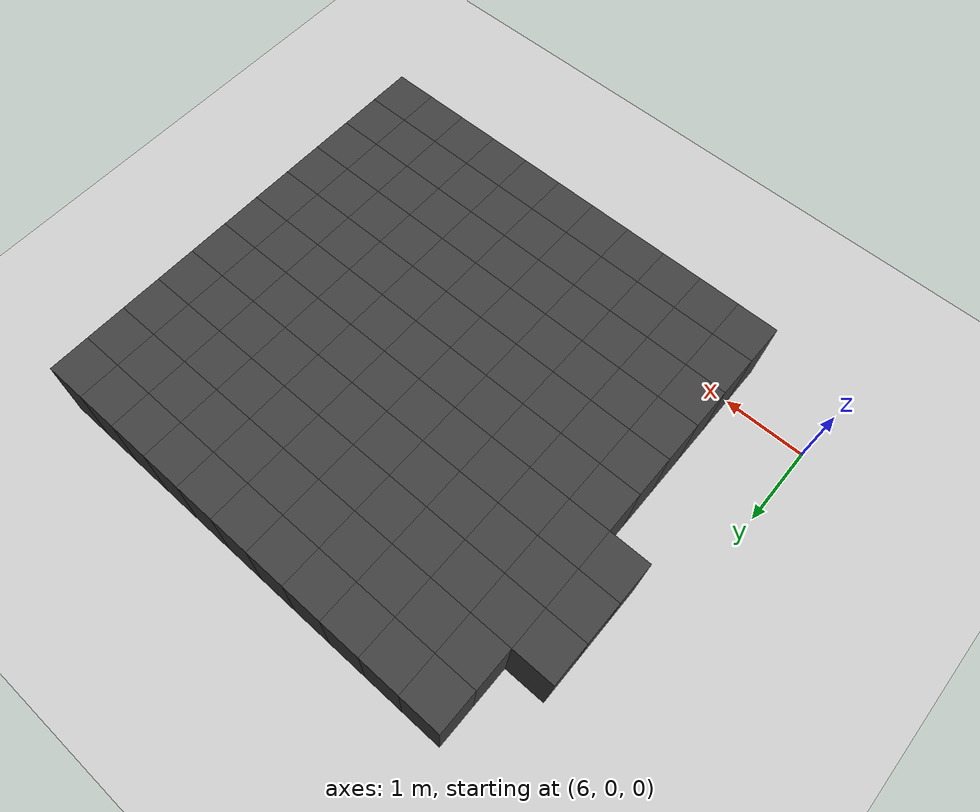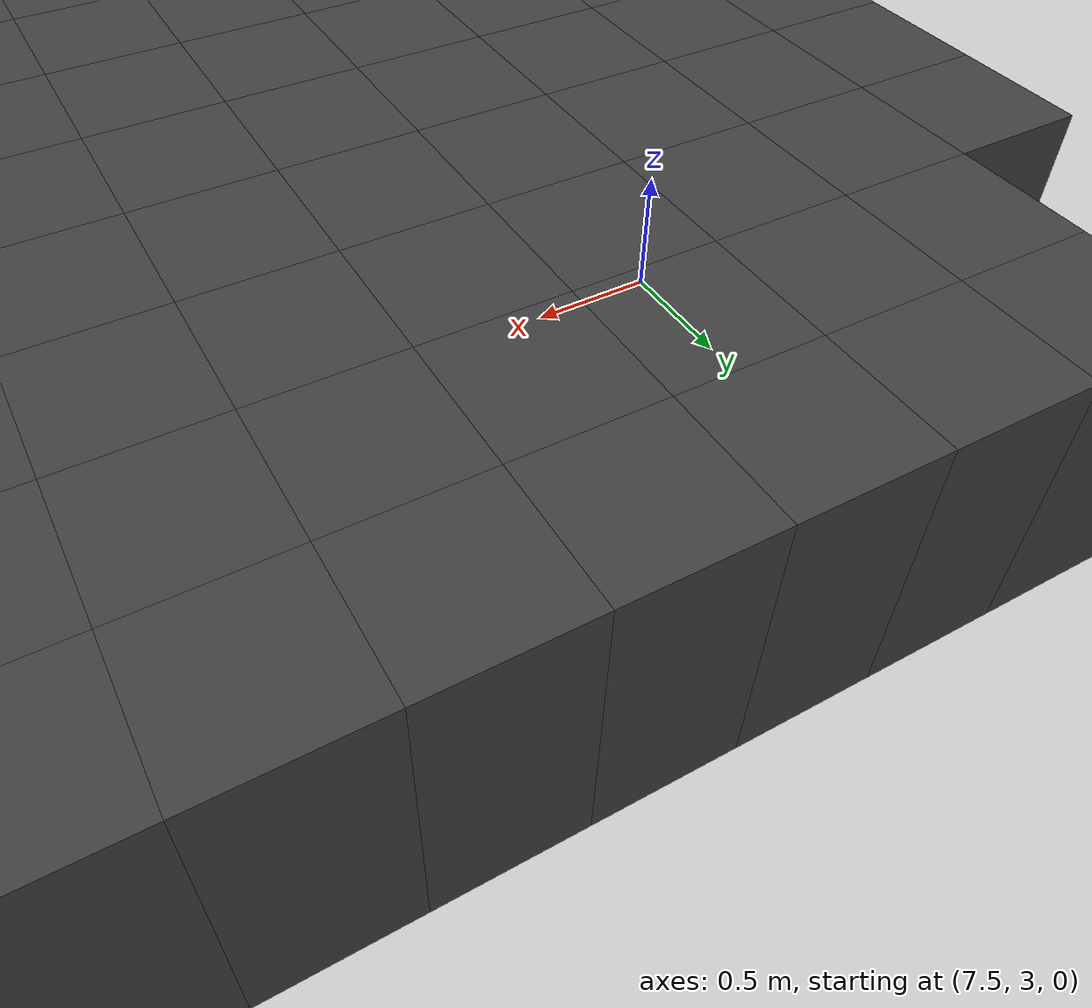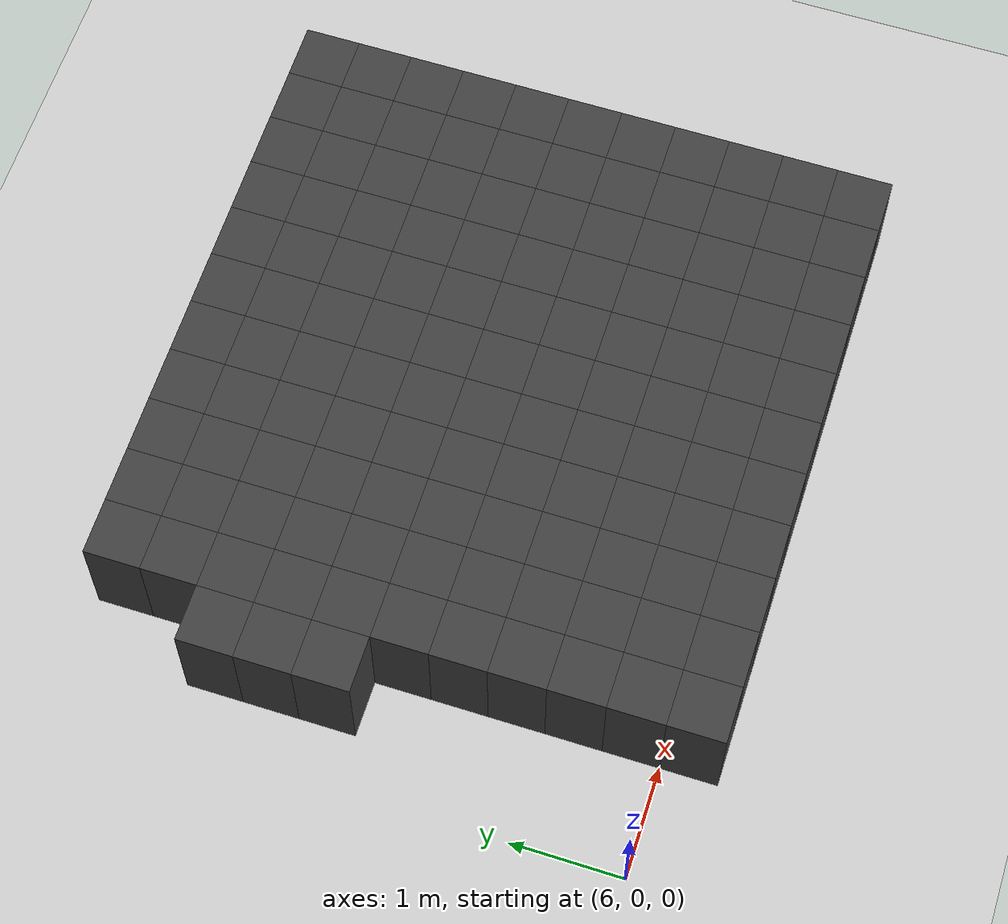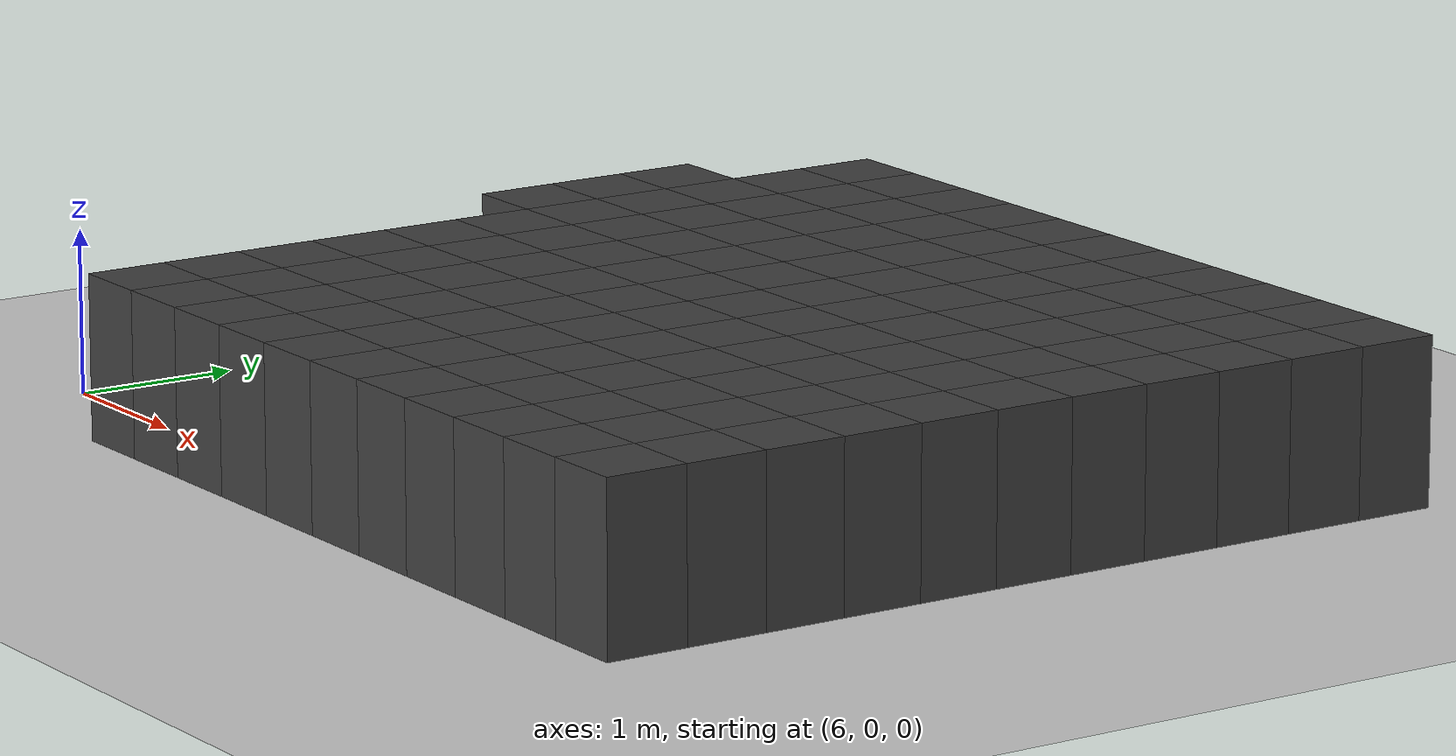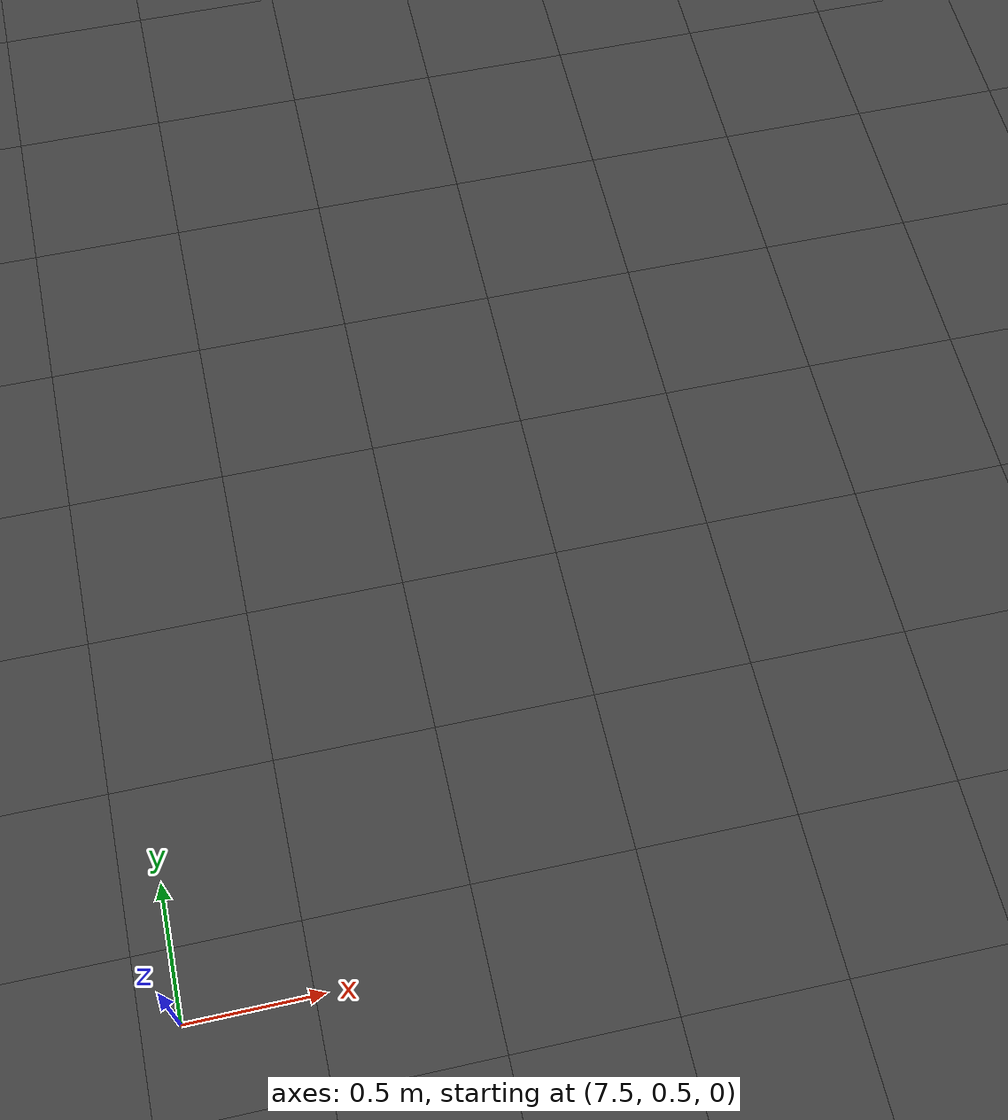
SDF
<sdf version="1.7">
 <world name="map_13820">
  <model name="ground_plane">
   <static>true</static>
   <link name="link">
    <collision name="collision">
     <geometry><plane><normal>0 0 1</normal><size>200 200</size></plane></geometry>
    </collision>
    <visual name="visual">
     <geometry><plane><normal>0 0 1</normal><size>200 200</size></plane></geometry>
     <material><ambient>0.8 0.8 0.8 1</ambient><diffuse>0.8 0.8 0.8 1</diffuse></material>
    </visual>
   </link>
  </model>
  <model name="maze_environment">
   <static>true</static>
   <link name="wall_508">
    <pose>7.250 4.750 0.500 0 0 0</pose>
    <collision name="col"><geometry><box><size>0.5 0.5 1.0</size></box></geometry></collision>
    <visual name="vis">
     <geometry><box><size>0.5 0.5 1.0</size></box></geometry>
     <material><ambient>0.15 0.15 0.15 1</ambient><diffuse>0.25 0.25 0.25 1</diffuse></material>
    </visual>
   </link>
   <link name="wall_509">
    <pose>7.750 4.750 0.500 0 0 0</pose>
    <collision name="col"><geometry><box><size>0.5 0.5 1.0</size></box></geometry></collision>
    <visual name="vis">
     <geometry><box><size>0.5 0.5 1.0</size></box></geometry>
     <material><ambient>0.15 0.15 0.15 1</ambient><diffuse>0.25 0.25 0.25 1</diffuse></material>
    </visual>
   </link>
   <link name="wall_510">
    <pose>8.250 4.750 0.500 0 0 0</pose>
    <collision name="col"><geometry><box><size>0.5 0.5 1.0</size></box></geometry></collision>
    <visual name="vis">
     <geometry><box><size>0.5 0.5 1.0</size></box></geometry>
     <material><ambient>0.15 0.15 0.15 1</ambient><diffuse>0.25 0.25 0.25 1</diffuse></material>
    </visual>
   </link>
   <link name="wall_511">
    <pose>8.750 4.750 0.500 0 0 0</pose>
    <collision name="col"><geometry><box><size>0.5 0.5 1.0</size></box></geometry></collision>
    <visual name="vis">
     <geometry><box><size>0.5 0.5 1.0</size></box></geometry>
     <material><ambient>0.15 0.15 0.15 1</ambient><diffuse>0.25 0.25 0.25 1</diffuse></material>
    </visual>
   </link>
   <link name="wall_512">
    <pose>9.250 4.750 0.500 0 0 0</pose>
    <collision name="col"><geometry><box><size>0.5 0.5 1.0</size></box></geometry></collision>
    <visual name="vis">
     <geometry><box><size>0.5 0.5 1.0</size></box></geometry>
     <material><ambient>0.15 0.15 0.15 1</ambient><diffuse>0.25 0.25 0.25 1</diffuse></material>
    </visual>
   </link>
   <link name="wall_513">
    <pose>9.750 4.750 0.500 0 0 0</pose>
    <collision name="col"><geometry><box><size>0.5 0.5 1.0</size></box></geometry></collision>
    <visual name="vis">
     <geometry><box><size>0.5 0.5 1.0</size></box></geometry>
     <material><ambient>0.15 0.15 0.15 1</ambient><diffuse>0.25 0.25 0.25 1</diffuse></material>
    </visual>
   </link>
   <link name="wall_514">
    <pose>10.250 4.750 0.500 0 0 0</pose>
    <collision name="col"><geometry><box><size>0.5 0.5 1.0</size></box></geometry></collision>
    <visual name="vis">
     <geometry><box><size>0.5 0.5 1.0</size></box></geometry>
     <material><ambient>0.15 0.15 0.15 1</ambient><diffuse>0.25 0.25 0.25 1</diffuse></material>
    </visual>
   </link>
   <link name="wall_515">
    <pose>10.750 4.750 0.500 0 0 0</pose>
    <collision name="col"><geometry><box><size>0.5 0.5 1.0</size></box></geometry></collision>
    <visual name="vis">
     <geometry><box><size>0.5 0.5 1.0</size></box></geometry>
     <material><ambient>0.15 0.15 0.15 1</ambient><diffuse>0.25 0.25 0.25 1</diffuse></material>
    </visual>
   </link>
   <link name="wall_516">
    <pose>11.250 4.750 0.500 0 0 0</pose>
    <collision name="col"><geometry><box><size>0.5 0.5 1.0</size></box></geometry></collision>
    <visual name="vis">
     <geometry><box><size>0.5 0.5 1.0</size></box></geometry>
     <material><ambient>0.15 0.15 0.15 1</ambient><diffuse>0.25 0.25 0.25 1</diffuse></material>
    </visual>
   </link>
   <link name="wall_517">
    <pose>11.750 4.750 0.500 0 0 0</pose>
    <collision name="col"><geometry><box><size>0.5 0.5 1.0</size></box></geometry></collision>
    <visual name="vis">
     <geometry><box><size>0.5 0.5 1.0</size></box></geometry>
     <material><ambient>0.15 0.15 0.15 1</ambient><diffuse>0.25 0.25 0.25 1</diffuse></material>
    </visual>
   </link>
   <link name="wall_518">
    <pose>12.250 4.750 0.500 0 0 0</pose>
    <collision name="col"><geometry><box><size>0.5 0.5 1.0</size></box></geometry></collision>
    <visual name="vis">
     <geometry><box><size>0.5 0.5 1.0</size></box></geometry>
     <material><ambient>0.15 0.15 0.15 1</ambient><diffuse>0.25 0.25 0.25 1</diffuse></material>
    </visual>
   </link>
   <link name="wall_542">
    <pose>7.250 4.250 0.500 0 0 0</pose>
    <collision name="col"><geometry><box><size>0.5 0.5 1.0</size></box></geometry></collision>
    <visual name="vis">
     <geometry><box><size>0.5 0.5 1.0</size></box></geometry>
     <material><ambient>0.15 0.15 0.15 1</ambient><diffuse>0.25 0.25 0.25 1</diffuse></material>
    </visual>
   </link>
   <link name="wall_543">
    <pose>7.750 4.250 0.500 0 0 0</pose>
    <collision name="col"><geometry><box><size>0.5 0.5 1.0</size></box></geometry></collision>
    <visual name="vis">
     <geometry><box><size>0.5 0.5 1.0</size></box></geometry>
     <material><ambient>0.15 0.15 0.15 1</ambient><diffuse>0.25 0.25 0.25 1</diffuse></material>
    </visual>
   </link>
   <link name="wall_544">
    <pose>8.250 4.250 0.500 0 0 0</pose>
    <collision name="col"><geometry><box><size>0.5 0.5 1.0</size></box></geometry></collision>
    <visual name="vis">
     <geometry><box><size>0.5 0.5 1.0</size></box></geometry>
     <material><ambient>0.15 0.15 0.15 1</ambient><diffuse>0.25 0.25 0.25 1</diffuse></material>
    </visual>
   </link>
   <link name="wall_545">
    <pose>8.750 4.250 0.500 0 0 0</pose>
    <collision name="col"><geometry><box><size>0.5 0.5 1.0</size></box></geometry></collision>
    <visual name="vis">
     <geometry><box><size>0.5 0.5 1.0</size></box></geometry>
     <material><ambient>0.15 0.15 0.15 1</ambient><diffuse>0.25 0.25 0.25 1</diffuse></material>
    </visual>
   </link>
   <link name="wall_546">
    <pose>9.250 4.250 0.500 0 0 0</pose>
    <collision name="col"><geometry><box><size>0.5 0.5 1.0</size></box></geometry></collision>
    <visual name="vis">
     <geometry><box><size>0.5 0.5 1.0</size></box></geometry>
     <material><ambient>0.15 0.15 0.15 1</ambient><diffuse>0.25 0.25 0.25 1</diffuse></material>
    </visual>
   </link>
   <link name="wall_547">
    <pose>9.750 4.250 0.500 0 0 0</pose>
    <collision name="col"><geometry><box><size>0.5 0.5 1.0</size></box></geometry></collision>
    <visual name="vis">
     <geometry><box><size>0.5 0.5 1.0</size></box></geometry>
     <material><ambient>0.15 0.15 0.15 1</ambient><diffuse>0.25 0.25 0.25 1</diffuse></material>
    </visual>
   </link>
   <link name="wall_548">
    <pose>10.250 4.250 0.500 0 0 0</pose>
    <collision name="col"><geometry><box><size>0.5 0.5 1.0</size></box></geometry></collision>
    <visual name="vis">
     <geometry><box><size>0.5 0.5 1.0</size></box></geometry>
     <material><ambient>0.15 0.15 0.15 1</ambient><diffuse>0.25 0.25 0.25 1</diffuse></material>
    </visual>
   </link>
   <link name="wall_549">
    <pose>10.750 4.250 0.500 0 0 0</pose>
    <collision name="col"><geometry><box><size>0.5 0.5 1.0</size></box></geometry></collision>
    <visual name="vis">
     <geometry><box><size>0.5 0.5 1.0</size></box></geometry>
     <material><ambient>0.15 0.15 0.15 1</ambient><diffuse>0.25 0.25 0.25 1</diffuse></material>
    </visual>
   </link>
   <link name="wall_550">
    <pose>11.250 4.250 0.500 0 0 0</pose>
    <collision name="col"><geometry><box><size>0.5 0.5 1.0</size></box></geometry></collision>
    <visual name="vis">
     <geometry><box><size>0.5 0.5 1.0</size></box></geometry>
     <material><ambient>0.15 0.15 0.15 1</ambient><diffuse>0.25 0.25 0.25 1</diffuse></material>
    </visual>
   </link>
   <link name="wall_551">
    <pose>11.750 4.250 0.500 0 0 0</pose>
    <collision name="col"><geometry><box><size>0.5 0.5 1.0</size></box></geometry></collision>
    <visual name="vis">
     <geometry><box><size>0.5 0.5 1.0</size></box></geometry>
     <material><ambient>0.15 0.15 0.15 1</ambient><diffuse>0.25 0.25 0.25 1</diffuse></material>
    </visual>
   </link>
   <link name="wall_552">
    <pose>12.250 4.250 0.500 0 0 0</pose>
    <collision name="col"><geometry><box><size>0.5 0.5 1.0</size></box></geometry></collision>
    <visual name="vis">
     <geometry><box><size>0.5 0.5 1.0</size></box></geometry>
     <material><ambient>0.15 0.15 0.15 1</ambient><diffuse>0.25 0.25 0.25 1</diffuse></material>
    </visual>
   </link>
   <link name="wall_577">
    <pose>6.750 3.750 0.500 0 0 0</pose>
    <collision name="col"><geometry><box><size>0.5 0.5 1.0</size></box></geometry></collision>
    <visual name="vis">
     <geometry><box><size>0.5 0.5 1.0</size></box></geometry>
     <material><ambient>0.15 0.15 0.15 1</ambient><diffuse>0.25 0.25 0.25 1</diffuse></material>
    </visual>
   </link>
   <link name="wall_578">
    <pose>7.250 3.750 0.500 0 0 0</pose>
    <collision name="col"><geometry><box><size>0.5 0.5 1.0</size></box></geometry></collision>
    <visual name="vis">
     <geometry><box><size>0.5 0.5 1.0</size></box></geometry>
     <material><ambient>0.15 0.15 0.15 1</ambient><diffuse>0.25 0.25 0.25 1</diffuse></material>
    </visual>
   </link>
   <link name="wall_579">
    <pose>7.750 3.750 0.500 0 0 0</pose>
    <collision name="col"><geometry><box><size>0.5 0.5 1.0</size></box></geometry></collision>
    <visual name="vis">
     <geometry><box><size>0.5 0.5 1.0</size></box></geometry>
     <material><ambient>0.15 0.15 0.15 1</ambient><diffuse>0.25 0.25 0.25 1</diffuse></material>
    </visual>
   </link>
   <link name="wall_580">
    <pose>8.250 3.750 0.500 0 0 0</pose>
    <collision name="col"><geometry><box><size>0.5 0.5 1.0</size></box></geometry></collision>
    <visual name="vis">
     <geometry><box><size>0.5 0.5 1.0</size></box></geometry>
     <material><ambient>0.15 0.15 0.15 1</ambient><diffuse>0.25 0.25 0.25 1</diffuse></material>
    </visual>
   </link>
   <link name="wall_581">
    <pose>8.750 3.750 0.500 0 0 0</pose>
    <collision name="col"><geometry><box><size>0.5 0.5 1.0</size></box></geometry></collision>
    <visual name="vis">
     <geometry><box><size>0.5 0.5 1.0</size></box></geometry>
     <material><ambient>0.15 0.15 0.15 1</ambient><diffuse>0.25 0.25 0.25 1</diffuse></material>
    </visual>
   </link>
   <link name="wall_582">
    <pose>9.250 3.750 0.500 0 0 0</pose>
    <collision name="col"><geometry><box><size>0.5 0.5 1.0</size></box></geometry></collision>
    <visual name="vis">
     <geometry><box><size>0.5 0.5 1.0</size></box></geometry>
     <material><ambient>0.15 0.15 0.15 1</ambient><diffuse>0.25 0.25 0.25 1</diffuse></material>
    </visual>
   </link>
   <link name="wall_583">
    <pose>9.750 3.750 0.500 0 0 0</pose>
    <collision name="col"><geometry><box><size>0.5 0.5 1.0</size></box></geometry></collision>
    <visual name="vis">
     <geometry><box><size>0.5 0.5 1.0</size></box></geometry>
     <material><ambient>0.15 0.15 0.15 1</ambient><diffuse>0.25 0.25 0.25 1</diffuse></material>
    </visual>
   </link>
   <link name="wall_584">
    <pose>10.250 3.750 0.500 0 0 0</pose>
    <collision name="col"><geometry><box><size>0.5 0.5 1.0</size></box></geometry></collision>
    <visual name="vis">
     <geometry><box><size>0.5 0.5 1.0</size></box></geometry>
     <material><ambient>0.15 0.15 0.15 1</ambient><diffuse>0.25 0.25 0.25 1</diffuse></material>
    </visual>
   </link>
   <link name="wall_585">
    <pose>10.750 3.750 0.500 0 0 0</pose>
    <collision name="col"><geometry><box><size>0.5 0.5 1.0</size></box></geometry></collision>
    <visual name="vis">
     <geometry><box><size>0.5 0.5 1.0</size></box></geometry>
     <material><ambient>0.15 0.15 0.15 1</ambient><diffuse>0.25 0.25 0.25 1</diffuse></material>
    </visual>
   </link>
   <link name="wall_586">
    <pose>11.250 3.750 0.500 0 0 0</pose>
    <collision name="col"><geometry><box><size>0.5 0.5 1.0</size></box></geometry></collision>
    <visual name="vis">
     <geometry><box><size>0.5 0.5 1.0</size></box></geometry>
     <material><ambient>0.15 0.15 0.15 1</ambient><diffuse>0.25 0.25 0.25 1</diffuse></material>
    </visual>
   </link>
   <link name="wall_587">
    <pose>11.750 3.750 0.500 0 0 0</pose>
    <collision name="col"><geometry><box><size>0.5 0.5 1.0</size></box></geometry></collision>
    <visual name="vis">
     <geometry><box><size>0.5 0.5 1.0</size></box></geometry>
     <material><ambient>0.15 0.15 0.15 1</ambient><diffuse>0.25 0.25 0.25 1</diffuse></material>
    </visual>
   </link>
   <link name="wall_588">
    <pose>12.250 3.750 0.500 0 0 0</pose>
    <collision name="col"><geometry><box><size>0.5 0.5 1.0</size></box></geometry></collision>
    <visual name="vis">
     <geometry><box><size>0.5 0.5 1.0</size></box></geometry>
     <material><ambient>0.15 0.15 0.15 1</ambient><diffuse>0.25 0.25 0.25 1</diffuse></material>
    </visual>
   </link>
   <link name="wall_614">
    <pose>6.750 3.250 0.500 0 0 0</pose>
    <collision name="col"><geometry><box><size>0.5 0.5 1.0</size></box></geometry></collision>
    <visual name="vis">
     <geometry><box><size>0.5 0.5 1.0</size></box></geometry>
     <material><ambient>0.15 0.15 0.15 1</ambient><diffuse>0.25 0.25 0.25 1</diffuse></material>
    </visual>
   </link>
   <link name="wall_615">
    <pose>7.250 3.250 0.500 0 0 0</pose>
    <collision name="col"><geometry><box><size>0.5 0.5 1.0</size></box></geometry></collision>
    <visual name="vis">
     <geometry><box><size>0.5 0.5 1.0</size></box></geometry>
     <material><ambient>0.15 0.15 0.15 1</ambient><diffuse>0.25 0.25 0.25 1</diffuse></material>
    </visual>
   </link>
   <link name="wall_616">
    <pose>7.750 3.250 0.500 0 0 0</pose>
    <collision name="col"><geometry><box><size>0.5 0.5 1.0</size></box></geometry></collision>
    <visual name="vis">
     <geometry><box><size>0.5 0.5 1.0</size></box></geometry>
     <material><ambient>0.15 0.15 0.15 1</ambient><diffuse>0.25 0.25 0.25 1</diffuse></material>
    </visual>
   </link>
   <link name="wall_617">
    <pose>8.250 3.250 0.500 0 0 0</pose>
    <collision name="col"><geometry><box><size>0.5 0.5 1.0</size></box></geometry></collision>
    <visual name="vis">
     <geometry><box><size>0.5 0.5 1.0</size></box></geometry>
     <material><ambient>0.15 0.15 0.15 1</ambient><diffuse>0.25 0.25 0.25 1</diffuse></material>
    </visual>
   </link>
   <link name="wall_618">
    <pose>8.750 3.250 0.500 0 0 0</pose>
    <collision name="col"><geometry><box><size>0.5 0.5 1.0</size></box></geometry></collision>
    <visual name="vis">
     <geometry><box><size>0.5 0.5 1.0</size></box></geometry>
     <material><ambient>0.15 0.15 0.15 1</ambient><diffuse>0.25 0.25 0.25 1</diffuse></material>
    </visual>
   </link>
   <link name="wall_619">
    <pose>9.250 3.250 0.500 0 0 0</pose>
    <collision name="col"><geometry><box><size>0.5 0.5 1.0</size></box></geometry></collision>
    <visual name="vis">
     <geometry><box><size>0.5 0.5 1.0</size></box></geometry>
     <material><ambient>0.15 0.15 0.15 1</ambient><diffuse>0.25 0.25 0.25 1</diffuse></material>
    </visual>
   </link>
   <link name="wall_620">
    <pose>9.750 3.250 0.500 0 0 0</pose>
    <collision name="col"><geometry><box><size>0.5 0.5 1.0</size></box></geometry></collision>
    <visual name="vis">
     <geometry><box><size>0.5 0.5 1.0</size></box></geometry>
     <material><ambient>0.15 0.15 0.15 1</ambient><diffuse>0.25 0.25 0.25 1</diffuse></material>
    </visual>
   </link>
   <link name="wall_621">
    <pose>10.250 3.250 0.500 0 0 0</pose>
    <collision name="col"><geometry><box><size>0.5 0.5 1.0</size></box></geometry></collision>
    <visual name="vis">
     <geometry><box><size>0.5 0.5 1.0</size></box></geometry>
     <material><ambient>0.15 0.15 0.15 1</ambient><diffuse>0.25 0.25 0.25 1</diffuse></material>
    </visual>
   </link>
   <link name="wall_622">
    <pose>10.750 3.250 0.500 0 0 0</pose>
    <collision name="col"><geometry><box><size>0.5 0.5 1.0</size></box></geometry></collision>
    <visual name="vis">
     <geometry><box><size>0.5 0.5 1.0</size></box></geometry>
     <material><ambient>0.15 0.15 0.15 1</ambient><diffuse>0.25 0.25 0.25 1</diffuse></material>
    </visual>
   </link>
   <link name="wall_623">
    <pose>11.250 3.250 0.500 0 0 0</pose>
    <collision name="col"><geometry><box><size>0.5 0.5 1.0</size></box></geometry></collision>
    <visual name="vis">
     <geometry><box><size>0.5 0.5 1.0</size></box></geometry>
     <material><ambient>0.15 0.15 0.15 1</ambient><diffuse>0.25 0.25 0.25 1</diffuse></material>
    </visual>
   </link>
   <link name="wall_624">
    <pose>11.750 3.250 0.500 0 0 0</pose>
    <collision name="col"><geometry><box><size>0.5 0.5 1.0</size></box></geometry></collision>
    <visual name="vis">
     <geometry><box><size>0.5 0.5 1.0</size></box></geometry>
     <material><ambient>0.15 0.15 0.15 1</ambient><diffuse>0.25 0.25 0.25 1</diffuse></material>
    </visual>
   </link>
   <link name="wall_625">
    <pose>12.250 3.250 0.500 0 0 0</pose>
    <collision name="col"><geometry><box><size>0.5 0.5 1.0</size></box></geometry></collision>
    <visual name="vis">
     <geometry><box><size>0.5 0.5 1.0</size></box></geometry>
     <material><ambient>0.15 0.15 0.15 1</ambient><diffuse>0.25 0.25 0.25 1</diffuse></material>
    </visual>
   </link>
   <link name="wall_658">
    <pose>6.750 2.750 0.500 0 0 0</pose>
    <collision name="col"><geometry><box><size>0.5 0.5 1.0</size></box></geometry></collision>
    <visual name="vis">
     <geometry><box><size>0.5 0.5 1.0</size></box></geometry>
     <material><ambient>0.15 0.15 0.15 1</ambient><diffuse>0.25 0.25 0.25 1</diffuse></material>
    </visual>
   </link>
   <link name="wall_659">
    <pose>7.250 2.750 0.500 0 0 0</pose>
    <collision name="col"><geometry><box><size>0.5 0.5 1.0</size></box></geometry></collision>
    <visual name="vis">
     <geometry><box><size>0.5 0.5 1.0</size></box></geometry>
     <material><ambient>0.15 0.15 0.15 1</ambient><diffuse>0.25 0.25 0.25 1</diffuse></material>
    </visual>
   </link>
   <link name="wall_660">
    <pose>7.750 2.750 0.500 0 0 0</pose>
    <collision name="col"><geometry><box><size>0.5 0.5 1.0</size></box></geometry></collision>
    <visual name="vis">
     <geometry><box><size>0.5 0.5 1.0</size></box></geometry>
     <material><ambient>0.15 0.15 0.15 1</ambient><diffuse>0.25 0.25 0.25 1</diffuse></material>
    </visual>
   </link>
   <link name="wall_661">
    <pose>8.250 2.750 0.500 0 0 0</pose>
    <collision name="col"><geometry><box><size>0.5 0.5 1.0</size></box></geometry></collision>
    <visual name="vis">
     <geometry><box><size>0.5 0.5 1.0</size></box></geometry>
     <material><ambient>0.15 0.15 0.15 1</ambient><diffuse>0.25 0.25 0.25 1</diffuse></material>
    </visual>
   </link>
   <link name="wall_662">
    <pose>8.750 2.750 0.500 0 0 0</pose>
    <collision name="col"><geometry><box><size>0.5 0.5 1.0</size></box></geometry></collision>
    <visual name="vis">
     <geometry><box><size>0.5 0.5 1.0</size></box></geometry>
     <material><ambient>0.15 0.15 0.15 1</ambient><diffuse>0.25 0.25 0.25 1</diffuse></material>
    </visual>
   </link>
   <link name="wall_663">
    <pose>9.250 2.750 0.500 0 0 0</pose>
    <collision name="col"><geometry><box><size>0.5 0.5 1.0</size></box></geometry></collision>
    <visual name="vis">
     <geometry><box><size>0.5 0.5 1.0</size></box></geometry>
     <material><ambient>0.15 0.15 0.15 1</ambient><diffuse>0.25 0.25 0.25 1</diffuse></material>
    </visual>
   </link>
   <link name="wall_664">
    <pose>9.750 2.750 0.500 0 0 0</pose>
    <collision name="col"><geometry><box><size>0.5 0.5 1.0</size></box></geometry></collision>
    <visual name="vis">
     <geometry><box><size>0.5 0.5 1.0</size></box></geometry>
     <material><ambient>0.15 0.15 0.15 1</ambient><diffuse>0.25 0.25 0.25 1</diffuse></material>
    </visual>
   </link>
   <link name="wall_665">
    <pose>10.250 2.750 0.500 0 0 0</pose>
    <collision name="col"><geometry><box><size>0.5 0.5 1.0</size></box></geometry></collision>
    <visual name="vis">
     <geometry><box><size>0.5 0.5 1.0</size></box></geometry>
     <material><ambient>0.15 0.15 0.15 1</ambient><diffuse>0.25 0.25 0.25 1</diffuse></material>
    </visual>
   </link>
   <link name="wall_666">
    <pose>10.750 2.750 0.500 0 0 0</pose>
    <collision name="col"><geometry><box><size>0.5 0.5 1.0</size></box></geometry></collision>
    <visual name="vis">
     <geometry><box><size>0.5 0.5 1.0</size></box></geometry>
     <material><ambient>0.15 0.15 0.15 1</ambient><diffuse>0.25 0.25 0.25 1</diffuse></material>
    </visual>
   </link>
   <link name="wall_667">
    <pose>11.250 2.750 0.500 0 0 0</pose>
    <collision name="col"><geometry><box><size>0.5 0.5 1.0</size></box></geometry></collision>
    <visual name="vis">
     <geometry><box><size>0.5 0.5 1.0</size></box></geometry>
     <material><ambient>0.15 0.15 0.15 1</ambient><diffuse>0.25 0.25 0.25 1</diffuse></material>
    </visual>
   </link>
   <link name="wall_668">
    <pose>11.750 2.750 0.500 0 0 0</pose>
    <collision name="col"><geometry><box><size>0.5 0.5 1.0</size></box></geometry></collision>
    <visual name="vis">
     <geometry><box><size>0.5 0.5 1.0</size></box></geometry>
     <material><ambient>0.15 0.15 0.15 1</ambient><diffuse>0.25 0.25 0.25 1</diffuse></material>
    </visual>
   </link>
   <link name="wall_669">
    <pose>12.250 2.750 0.500 0 0 0</pose>
    <collision name="col"><geometry><box><size>0.5 0.5 1.0</size></box></geometry></collision>
    <visual name="vis">
     <geometry><box><size>0.5 0.5 1.0</size></box></geometry>
     <material><ambient>0.15 0.15 0.15 1</ambient><diffuse>0.25 0.25 0.25 1</diffuse></material>
    </visual>
   </link>
   <link name="wall_701">
    <pose>7.250 2.250 0.500 0 0 0</pose>
    <collision name="col"><geometry><box><size>0.5 0.5 1.0</size></box></geometry></collision>
    <visual name="vis">
     <geometry><box><size>0.5 0.5 1.0</size></box></geometry>
     <material><ambient>0.15 0.15 0.15 1</ambient><diffuse>0.25 0.25 0.25 1</diffuse></material>
    </visual>
   </link>
   <link name="wall_702">
    <pose>7.750 2.250 0.500 0 0 0</pose>
    <collision name="col"><geometry><box><size>0.5 0.5 1.0</size></box></geometry></collision>
    <visual name="vis">
     <geometry><box><size>0.5 0.5 1.0</size></box></geometry>
     <material><ambient>0.15 0.15 0.15 1</ambient><diffuse>0.25 0.25 0.25 1</diffuse></material>
    </visual>
   </link>
   <link name="wall_703">
    <pose>8.250 2.250 0.500 0 0 0</pose>
    <collision name="col"><geometry><box><size>0.5 0.5 1.0</size></box></geometry></collision>
    <visual name="vis">
     <geometry><box><size>0.5 0.5 1.0</size></box></geometry>
     <material><ambient>0.15 0.15 0.15 1</ambient><diffuse>0.25 0.25 0.25 1</diffuse></material>
    </visual>
   </link>
   <link name="wall_704">
    <pose>8.750 2.250 0.500 0 0 0</pose>
    <collision name="col"><geometry><box><size>0.5 0.5 1.0</size></box></geometry></collision>
    <visual name="vis">
     <geometry><box><size>0.5 0.5 1.0</size></box></geometry>
     <material><ambient>0.15 0.15 0.15 1</ambient><diffuse>0.25 0.25 0.25 1</diffuse></material>
    </visual>
   </link>
   <link name="wall_705">
    <pose>9.250 2.250 0.500 0 0 0</pose>
    <collision name="col"><geometry><box><size>0.5 0.5 1.0</size></box></geometry></collision>
    <visual name="vis">
     <geometry><box><size>0.5 0.5 1.0</size></box></geometry>
     <material><ambient>0.15 0.15 0.15 1</ambient><diffuse>0.25 0.25 0.25 1</diffuse></material>
    </visual>
   </link>
   <link name="wall_706">
    <pose>9.750 2.250 0.500 0 0 0</pose>
    <collision name="col"><geometry><box><size>0.5 0.5 1.0</size></box></geometry></collision>
    <visual name="vis">
     <geometry><box><size>0.5 0.5 1.0</size></box></geometry>
     <material><ambient>0.15 0.15 0.15 1</ambient><diffuse>0.25 0.25 0.25 1</diffuse></material>
    </visual>
   </link>
   <link name="wall_707">
    <pose>10.250 2.250 0.500 0 0 0</pose>
    <collision name="col"><geometry><box><size>0.5 0.5 1.0</size></box></geometry></collision>
    <visual name="vis">
     <geometry><box><size>0.5 0.5 1.0</size></box></geometry>
     <material><ambient>0.15 0.15 0.15 1</ambient><diffuse>0.25 0.25 0.25 1</diffuse></material>
    </visual>
   </link>
   <link name="wall_708">
    <pose>10.750 2.250 0.500 0 0 0</pose>
    <collision name="col"><geometry><box><size>0.5 0.5 1.0</size></box></geometry></collision>
    <visual name="vis">
     <geometry><box><size>0.5 0.5 1.0</size></box></geometry>
     <material><ambient>0.15 0.15 0.15 1</ambient><diffuse>0.25 0.25 0.25 1</diffuse></material>
    </visual>
   </link>
   <link name="wall_709">
    <pose>11.250 2.250 0.500 0 0 0</pose>
    <collision name="col"><geometry><box><size>0.5 0.5 1.0</size></box></geometry></collision>
    <visual name="vis">
     <geometry><box><size>0.5 0.5 1.0</size></box></geometry>
     <material><ambient>0.15 0.15 0.15 1</ambient><diffuse>0.25 0.25 0.25 1</diffuse></material>
    </visual>
   </link>
   <link name="wall_710">
    <pose>11.750 2.250 0.500 0 0 0</pose>
    <collision name="col"><geometry><box><size>0.5 0.5 1.0</size></box></geometry></collision>
    <visual name="vis">
     <geometry><box><size>0.5 0.5 1.0</size></box></geometry>
     <material><ambient>0.15 0.15 0.15 1</ambient><diffuse>0.25 0.25 0.25 1</diffuse></material>
    </visual>
   </link>
   <link name="wall_711">
    <pose>12.250 2.250 0.500 0 0 0</pose>
    <collision name="col"><geometry><box><size>0.5 0.5 1.0</size></box></geometry></collision>
    <visual name="vis">
     <geometry><box><size>0.5 0.5 1.0</size></box></geometry>
     <material><ambient>0.15 0.15 0.15 1</ambient><diffuse>0.25 0.25 0.25 1</diffuse></material>
    </visual>
   </link>
   <link name="wall_743">
    <pose>7.250 1.750 0.500 0 0 0</pose>
    <collision name="col"><geometry><box><size>0.5 0.5 1.0</size></box></geometry></collision>
    <visual name="vis">
     <geometry><box><size>0.5 0.5 1.0</size></box></geometry>
     <material><ambient>0.15 0.15 0.15 1</ambient><diffuse>0.25 0.25 0.25 1</diffuse></material>
    </visual>
   </link>
   <link name="wall_744">
    <pose>7.750 1.750 0.500 0 0 0</pose>
    <collision name="col"><geometry><box><size>0.5 0.5 1.0</size></box></geometry></collision>
    <visual name="vis">
     <geometry><box><size>0.5 0.5 1.0</size></box></geometry>
     <material><ambient>0.15 0.15 0.15 1</ambient><diffuse>0.25 0.25 0.25 1</diffuse></material>
    </visual>
   </link>
   <link name="wall_745">
    <pose>8.250 1.750 0.500 0 0 0</pose>
    <collision name="col"><geometry><box><size>0.5 0.5 1.0</size></box></geometry></collision>
    <visual name="vis">
     <geometry><box><size>0.5 0.5 1.0</size></box></geometry>
     <material><ambient>0.15 0.15 0.15 1</ambient><diffuse>0.25 0.25 0.25 1</diffuse></material>
    </visual>
   </link>
   <link name="wall_746">
    <pose>8.750 1.750 0.500 0 0 0</pose>
    <collision name="col"><geometry><box><size>0.5 0.5 1.0</size></box></geometry></collision>
    <visual name="vis">
     <geometry><box><size>0.5 0.5 1.0</size></box></geometry>
     <material><ambient>0.15 0.15 0.15 1</ambient><diffuse>0.25 0.25 0.25 1</diffuse></material>
    </visual>
   </link>
   <link name="wall_747">
    <pose>9.250 1.750 0.500 0 0 0</pose>
    <collision name="col"><geometry><box><size>0.5 0.5 1.0</size></box></geometry></collision>
    <visual name="vis">
     <geometry><box><size>0.5 0.5 1.0</size></box></geometry>
     <material><ambient>0.15 0.15 0.15 1</ambient><diffuse>0.25 0.25 0.25 1</diffuse></material>
    </visual>
   </link>
   <link name="wall_748">
    <pose>9.750 1.750 0.500 0 0 0</pose>
    <collision name="col"><geometry><box><size>0.5 0.5 1.0</size></box></geometry></collision>
    <visual name="vis">
     <geometry><box><size>0.5 0.5 1.0</size></box></geometry>
     <material><ambient>0.15 0.15 0.15 1</ambient><diffuse>0.25 0.25 0.25 1</diffuse></material>
    </visual>
   </link>
   <link name="wall_749">
    <pose>10.250 1.750 0.500 0 0 0</pose>
    <collision name="col"><geometry><box><size>0.5 0.5 1.0</size></box></geometry></collision>
    <visual name="vis">
     <geometry><box><size>0.5 0.5 1.0</size></box></geometry>
     <material><ambient>0.15 0.15 0.15 1</ambient><diffuse>0.25 0.25 0.25 1</diffuse></material>
    </visual>
   </link>
   <link name="wall_750">
    <pose>10.750 1.750 0.500 0 0 0</pose>
    <collision name="col"><geometry><box><size>0.5 0.5 1.0</size></box></geometry></collision>
    <visual name="vis">
     <geometry><box><size>0.5 0.5 1.0</size></box></geometry>
     <material><ambient>0.15 0.15 0.15 1</ambient><diffuse>0.25 0.25 0.25 1</diffuse></material>
    </visual>
   </link>
   <link name="wall_751">
    <pose>11.250 1.750 0.500 0 0 0</pose>
    <collision name="col"><geometry><box><size>0.5 0.5 1.0</size></box></geometry></collision>
    <visual name="vis">
     <geometry><box><size>0.5 0.5 1.0</size></box></geometry>
     <material><ambient>0.15 0.15 0.15 1</ambient><diffuse>0.25 0.25 0.25 1</diffuse></material>
    </visual>
   </link>
   <link name="wall_752">
    <pose>11.750 1.750 0.500 0 0 0</pose>
    <collision name="col"><geometry><box><size>0.5 0.5 1.0</size></box></geometry></collision>
    <visual name="vis">
     <geometry><box><size>0.5 0.5 1.0</size></box></geometry>
     <material><ambient>0.15 0.15 0.15 1</ambient><diffuse>0.25 0.25 0.25 1</diffuse></material>
    </visual>
   </link>
   <link name="wall_753">
    <pose>12.250 1.750 0.500 0 0 0</pose>
    <collision name="col"><geometry><box><size>0.5 0.5 1.0</size></box></geometry></collision>
    <visual name="vis">
     <geometry><box><size>0.5 0.5 1.0</size></box></geometry>
     <material><ambient>0.15 0.15 0.15 1</ambient><diffuse>0.25 0.25 0.25 1</diffuse></material>
    </visual>
   </link>
   <link name="wall_785">
    <pose>7.250 1.250 0.500 0 0 0</pose>
    <collision name="col"><geometry><box><size>0.5 0.5 1.0</size></box></geometry></collision>
    <visual name="vis">
     <geometry><box><size>0.5 0.5 1.0</size></box></geometry>
     <material><ambient>0.15 0.15 0.15 1</ambient><diffuse>0.25 0.25 0.25 1</diffuse></material>
    </visual>
   </link>
   <link name="wall_786">
    <pose>7.750 1.250 0.500 0 0 0</pose>
    <collision name="col"><geometry><box><size>0.5 0.5 1.0</size></box></geometry></collision>
    <visual name="vis">
     <geometry><box><size>0.5 0.5 1.0</size></box></geometry>
     <material><ambient>0.15 0.15 0.15 1</ambient><diffuse>0.25 0.25 0.25 1</diffuse></material>
    </visual>
   </link>
   <link name="wall_787">
    <pose>8.250 1.250 0.500 0 0 0</pose>
    <collision name="col"><geometry><box><size>0.5 0.5 1.0</size></box></geometry></collision>
    <visual name="vis">
     <geometry><box><size>0.5 0.5 1.0</size></box></geometry>
     <material><ambient>0.15 0.15 0.15 1</ambient><diffuse>0.25 0.25 0.25 1</diffuse></material>
    </visual>
   </link>
   <link name="wall_788">
    <pose>8.750 1.250 0.500 0 0 0</pose>
    <collision name="col"><geometry><box><size>0.5 0.5 1.0</size></box></geometry></collision>
    <visual name="vis">
     <geometry><box><size>0.5 0.5 1.0</size></box></geometry>
     <material><ambient>0.15 0.15 0.15 1</ambient><diffuse>0.25 0.25 0.25 1</diffuse></material>
    </visual>
   </link>
   <link name="wall_789">
    <pose>9.250 1.250 0.500 0 0 0</pose>
    <collision name="col"><geometry><box><size>0.5 0.5 1.0</size></box></geometry></collision>
    <visual name="vis">
     <geometry><box><size>0.5 0.5 1.0</size></box></geometry>
     <material><ambient>0.15 0.15 0.15 1</ambient><diffuse>0.25 0.25 0.25 1</diffuse></material>
    </visual>
   </link>
   <link name="wall_790">
    <pose>9.750 1.250 0.500 0 0 0</pose>
    <collision name="col"><geometry><box><size>0.5 0.5 1.0</size></box></geometry></collision>
    <visual name="vis">
     <geometry><box><size>0.5 0.5 1.0</size></box></geometry>
     <material><ambient>0.15 0.15 0.15 1</ambient><diffuse>0.25 0.25 0.25 1</diffuse></material>
    </visual>
   </link>
   <link name="wall_791">
    <pose>10.250 1.250 0.500 0 0 0</pose>
    <collision name="col"><geometry><box><size>0.5 0.5 1.0</size></box></geometry></collision>
    <visual name="vis">
     <geometry><box><size>0.5 0.5 1.0</size></box></geometry>
     <material><ambient>0.15 0.15 0.15 1</ambient><diffuse>0.25 0.25 0.25 1</diffuse></material>
    </visual>
   </link>
   <link name="wall_792">
    <pose>10.750 1.250 0.500 0 0 0</pose>
    <collision name="col"><geometry><box><size>0.5 0.5 1.0</size></box></geometry></collision>
    <visual name="vis">
     <geometry><box><size>0.5 0.5 1.0</size></box></geometry>
     <material><ambient>0.15 0.15 0.15 1</ambient><diffuse>0.25 0.25 0.25 1</diffuse></material>
    </visual>
   </link>
   <link name="wall_793">
    <pose>11.250 1.250 0.500 0 0 0</pose>
    <collision name="col"><geometry><box><size>0.5 0.5 1.0</size></box></geometry></collision>
    <visual name="vis">
     <geometry><box><size>0.5 0.5 1.0</size></box></geometry>
     <material><ambient>0.15 0.15 0.15 1</ambient><diffuse>0.25 0.25 0.25 1</diffuse></material>
    </visual>
   </link>
   <link name="wall_794">
    <pose>11.750 1.250 0.500 0 0 0</pose>
    <collision name="col"><geometry><box><size>0.5 0.5 1.0</size></box></geometry></collision>
    <visual name="vis">
     <geometry><box><size>0.5 0.5 1.0</size></box></geometry>
     <material><ambient>0.15 0.15 0.15 1</ambient><diffuse>0.25 0.25 0.25 1</diffuse></material>
    </visual>
   </link>
   <link name="wall_795">
    <pose>12.250 1.250 0.500 0 0 0</pose>
    <collision name="col"><geometry><box><size>0.5 0.5 1.0</size></box></geometry></collision>
    <visual name="vis">
     <geometry><box><size>0.5 0.5 1.0</size></box></geometry>
     <material><ambient>0.15 0.15 0.15 1</ambient><diffuse>0.25 0.25 0.25 1</diffuse></material>
    </visual>
   </link>
   <link name="wall_827">
    <pose>7.250 0.750 0.500 0 0 0</pose>
    <collision name="col"><geometry><box><size>0.5 0.5 1.0</size></box></geometry></collision>
    <visual name="vis">
     <geometry><box><size>0.5 0.5 1.0</size></box></geometry>
     <material><ambient>0.15 0.15 0.15 1</ambient><diffuse>0.25 0.25 0.25 1</diffuse></material>
    </visual>
   </link>
   <link name="wall_828">
    <pose>7.750 0.750 0.500 0 0 0</pose>
    <collision name="col"><geometry><box><size>0.5 0.5 1.0</size></box></geometry></collision>
    <visual name="vis">
     <geometry><box><size>0.5 0.5 1.0</size></box></geometry>
     <material><ambient>0.15 0.15 0.15 1</ambient><diffuse>0.25 0.25 0.25 1</diffuse></material>
    </visual>
   </link>
   <link name="wall_829">
    <pose>8.250 0.750 0.500 0 0 0</pose>
    <collision name="col"><geometry><box><size>0.5 0.5 1.0</size></box></geometry></collision>
    <visual name="vis">
     <geometry><box><size>0.5 0.5 1.0</size></box></geometry>
     <material><ambient>0.15 0.15 0.15 1</ambient><diffuse>0.25 0.25 0.25 1</diffuse></material>
    </visual>
   </link>
   <link name="wall_830">
    <pose>8.750 0.750 0.500 0 0 0</pose>
    <collision name="col"><geometry><box><size>0.5 0.5 1.0</size></box></geometry></collision>
    <visual name="vis">
     <geometry><box><size>0.5 0.5 1.0</size></box></geometry>
     <material><ambient>0.15 0.15 0.15 1</ambient><diffuse>0.25 0.25 0.25 1</diffuse></material>
    </visual>
   </link>
   <link name="wall_831">
    <pose>9.250 0.750 0.500 0 0 0</pose>
    <collision name="col"><geometry><box><size>0.5 0.5 1.0</size></box></geometry></collision>
    <visual name="vis">
     <geometry><box><size>0.5 0.5 1.0</size></box></geometry>
     <material><ambient>0.15 0.15 0.15 1</ambient><diffuse>0.25 0.25 0.25 1</diffuse></material>
    </visual>
   </link>
   <link name="wall_832">
    <pose>9.750 0.750 0.500 0 0 0</pose>
    <collision name="col"><geometry><box><size>0.5 0.5 1.0</size></box></geometry></collision>
    <visual name="vis">
     <geometry><box><size>0.5 0.5 1.0</size></box></geometry>
     <material><ambient>0.15 0.15 0.15 1</ambient><diffuse>0.25 0.25 0.25 1</diffuse></material>
    </visual>
   </link>
   <link name="wall_833">
    <pose>10.250 0.750 0.500 0 0 0</pose>
    <collision name="col"><geometry><box><size>0.5 0.5 1.0</size></box></geometry></collision>
    <visual name="vis">
     <geometry><box><size>0.5 0.5 1.0</size></box></geometry>
     <material><ambient>0.15 0.15 0.15 1</ambient><diffuse>0.25 0.25 0.25 1</diffuse></material>
    </visual>
   </link>
   <link name="wall_834">
    <pose>10.750 0.750 0.500 0 0 0</pose>
    <collision name="col"><geometry><box><size>0.5 0.5 1.0</size></box></geometry></collision>
    <visual name="vis">
     <geometry><box><size>0.5 0.5 1.0</size></box></geometry>
     <material><ambient>0.15 0.15 0.15 1</ambient><diffuse>0.25 0.25 0.25 1</diffuse></material>
    </visual>
   </link>
   <link name="wall_835">
    <pose>11.250 0.750 0.500 0 0 0</pose>
    <collision name="col"><geometry><box><size>0.5 0.5 1.0</size></box></geometry></collision>
    <visual name="vis">
     <geometry><box><size>0.5 0.5 1.0</size></box></geometry>
     <material><ambient>0.15 0.15 0.15 1</ambient><diffuse>0.25 0.25 0.25 1</diffuse></material>
    </visual>
   </link>
   <link name="wall_836">
    <pose>11.750 0.750 0.500 0 0 0</pose>
    <collision name="col"><geometry><box><size>0.5 0.5 1.0</size></box></geometry></collision>
    <visual name="vis">
     <geometry><box><size>0.5 0.5 1.0</size></box></geometry>
     <material><ambient>0.15 0.15 0.15 1</ambient><diffuse>0.25 0.25 0.25 1</diffuse></material>
    </visual>
   </link>
   <link name="wall_837">
    <pose>12.250 0.750 0.500 0 0 0</pose>
    <collision name="col"><geometry><box><size>0.5 0.5 1.0</size></box></geometry></collision>
    <visual name="vis">
     <geometry><box><size>0.5 0.5 1.0</size></box></geometry>
     <material><ambient>0.15 0.15 0.15 1</ambient><diffuse>0.25 0.25 0.25 1</diffuse></material>
    </visual>
   </link>
   <link name="wall_869">
    <pose>7.250 0.250 0.500 0 0 0</pose>
    <collision name="col"><geometry><box><size>0.5 0.5 1.0</size></box></geometry></collision>
    <visual name="vis">
     <geometry><box><size>0.5 0.5 1.0</size></box></geometry>
     <material><ambient>0.15 0.15 0.15 1</ambient><diffuse>0.25 0.25 0.25 1</diffuse></material>
    </visual>
   </link>
   <link name="wall_870">
    <pose>7.750 0.250 0.500 0 0 0</pose>
    <collision name="col"><geometry><box><size>0.5 0.5 1.0</size></box></geometry></collision>
    <visual name="vis">
     <geometry><box><size>0.5 0.5 1.0</size></box></geometry>
     <material><ambient>0.15 0.15 0.15 1</ambient><diffuse>0.25 0.25 0.25 1</diffuse></material>
    </visual>
   </link>
   <link name="wall_871">
    <pose>8.250 0.250 0.500 0 0 0</pose>
    <collision name="col"><geometry><box><size>0.5 0.5 1.0</size></box></geometry></collision>
    <visual name="vis">
     <geometry><box><size>0.5 0.5 1.0</size></box></geometry>
     <material><ambient>0.15 0.15 0.15 1</ambient><diffuse>0.25 0.25 0.25 1</diffuse></material>
    </visual>
   </link>
   <link name="wall_872">
    <pose>8.750 0.250 0.500 0 0 0</pose>
    <collision name="col"><geometry><box><size>0.5 0.5 1.0</size></box></geometry></collision>
    <visual name="vis">
     <geometry><box><size>0.5 0.5 1.0</size></box></geometry>
     <material><ambient>0.15 0.15 0.15 1</ambient><diffuse>0.25 0.25 0.25 1</diffuse></material>
    </visual>
   </link>
   <link name="wall_873">
    <pose>9.250 0.250 0.500 0 0 0</pose>
    <collision name="col"><geometry><box><size>0.5 0.5 1.0</size></box></geometry></collision>
    <visual name="vis">
     <geometry><box><size>0.5 0.5 1.0</size></box></geometry>
     <material><ambient>0.15 0.15 0.15 1</ambient><diffuse>0.25 0.25 0.25 1</diffuse></material>
    </visual>
   </link>
   <link name="wall_874">
    <pose>9.750 0.250 0.500 0 0 0</pose>
    <collision name="col"><geometry><box><size>0.5 0.5 1.0</size></box></geometry></collision>
    <visual name="vis">
     <geometry><box><size>0.5 0.5 1.0</size></box></geometry>
     <material><ambient>0.15 0.15 0.15 1</ambient><diffuse>0.25 0.25 0.25 1</diffuse></material>
    </visual>
   </link>
   <link name="wall_875">
    <pose>10.250 0.250 0.500 0 0 0</pose>
    <collision name="col"><geometry><box><size>0.5 0.5 1.0</size></box></geometry></collision>
    <visual name="vis">
     <geometry><box><size>0.5 0.5 1.0</size></box></geometry>
     <material><ambient>0.15 0.15 0.15 1</ambient><diffuse>0.25 0.25 0.25 1</diffuse></material>
    </visual>
   </link>
   <link name="wall_876">
    <pose>10.750 0.250 0.500 0 0 0</pose>
    <collision name="col"><geometry><box><size>0.5 0.5 1.0</size></box></geometry></collision>
    <visual name="vis">
     <geometry><box><size>0.5 0.5 1.0</size></box></geometry>
     <material><ambient>0.15 0.15 0.15 1</ambient><diffuse>0.25 0.25 0.25 1</diffuse></material>
    </visual>
   </link>
   <link name="wall_877">
    <pose>11.250 0.250 0.500 0 0 0</pose>
    <collision name="col"><geometry><box><size>0.5 0.5 1.0</size></box></geometry></collision>
    <visual name="vis">
     <geometry><box><size>0.5 0.5 1.0</size></box></geometry>
     <material><ambient>0.15 0.15 0.15 1</ambient><diffuse>0.25 0.25 0.25 1</diffuse></material>
    </visual>
   </link>
   <link name="wall_878">
    <pose>11.750 0.250 0.500 0 0 0</pose>
    <collision name="col"><geometry><box><size>0.5 0.5 1.0</size></box></geometry></collision>
    <visual name="vis">
     <geometry><box><size>0.5 0.5 1.0</size></box></geometry>
     <material><ambient>0.15 0.15 0.15 1</ambient><diffuse>0.25 0.25 0.25 1</diffuse></material>
    </visual>
   </link>
   <link name="wall_879">
    <pose>12.250 0.250 0.500 0 0 0</pose>
    <collision name="col"><geometry><box><size>0.5 0.5 1.0</size></box></geometry></collision>
    <visual name="vis">
     <geometry><box><size>0.5 0.5 1.0</size></box></geometry>
     <material><ambient>0.15 0.15 0.15 1</ambient><diffuse>0.25 0.25 0.25 1</diffuse></material>
    </visual>
   </link>
   <link name="wall_909">
    <pose>7.250 -0.250 0.500 0 0 0</pose>
    <collision name="col"><geometry><box><size>0.5 0.5 1.0</size></box></geometry></collision>
    <visual name="vis">
     <geometry><box><size>0.5 0.5 1.0</size></box></geometry>
     <material><ambient>0.15 0.15 0.15 1</ambient><diffuse>0.25 0.25 0.25 1</diffuse></material>
    </visual>
   </link>
   <link name="wall_910">
    <pose>7.750 -0.250 0.500 0 0 0</pose>
    <collision name="col"><geometry><box><size>0.5 0.5 1.0</size></box></geometry></collision>
    <visual name="vis">
     <geometry><box><size>0.5 0.5 1.0</size></box></geometry>
     <material><ambient>0.15 0.15 0.15 1</ambient><diffuse>0.25 0.25 0.25 1</diffuse></material>
    </visual>
   </link>
   <link name="wall_911">
    <pose>8.250 -0.250 0.500 0 0 0</pose>
    <collision name="col"><geometry><box><size>0.5 0.5 1.0</size></box></geometry></collision>
    <visual name="vis">
     <geometry><box><size>0.5 0.5 1.0</size></box></geometry>
     <material><ambient>0.15 0.15 0.15 1</ambient><diffuse>0.25 0.25 0.25 1</diffuse></material>
    </visual>
   </link>
   <link name="wall_912">
    <pose>8.750 -0.250 0.500 0 0 0</pose>
    <collision name="col"><geometry><box><size>0.5 0.5 1.0</size></box></geometry></collision>
    <visual name="vis">
     <geometry><box><size>0.5 0.5 1.0</size></box></geometry>
     <material><ambient>0.15 0.15 0.15 1</ambient><diffuse>0.25 0.25 0.25 1</diffuse></material>
    </visual>
   </link>
   <link name="wall_913">
    <pose>9.250 -0.250 0.500 0 0 0</pose>
    <collision name="col"><geometry><box><size>0.5 0.5 1.0</size></box></geometry></collision>
    <visual name="vis">
     <geometry><box><size>0.5 0.5 1.0</size></box></geometry>
     <material><ambient>0.15 0.15 0.15 1</ambient><diffuse>0.25 0.25 0.25 1</diffuse></material>
    </visual>
   </link>
   <link name="wall_914">
    <pose>9.750 -0.250 0.500 0 0 0</pose>
    <collision name="col"><geometry><box><size>0.5 0.5 1.0</size></box></geometry></collision>
    <visual name="vis">
     <geometry><box><size>0.5 0.5 1.0</size></box></geometry>
     <material><ambient>0.15 0.15 0.15 1</ambient><diffuse>0.25 0.25 0.25 1</diffuse></material>
    </visual>
   </link>
   <link name="wall_915">
    <pose>10.250 -0.250 0.500 0 0 0</pose>
    <collision name="col"><geometry><box><size>0.5 0.5 1.0</size></box></geometry></collision>
    <visual name="vis">
     <geometry><box><size>0.5 0.5 1.0</size></box></geometry>
     <material><ambient>0.15 0.15 0.15 1</ambient><diffuse>0.25 0.25 0.25 1</diffuse></material>
    </visual>
   </link>
   <link name="wall_916">
    <pose>10.750 -0.250 0.500 0 0 0</pose>
    <collision name="col"><geometry><box><size>0.5 0.5 1.0</size></box></geometry></collision>
    <visual name="vis">
     <geometry><box><size>0.5 0.5 1.0</size></box></geometry>
     <material><ambient>0.15 0.15 0.15 1</ambient><diffuse>0.25 0.25 0.25 1</diffuse></material>
    </visual>
   </link>
   <link name="wall_917">
    <pose>11.250 -0.250 0.500 0 0 0</pose>
    <collision name="col"><geometry><box><size>0.5 0.5 1.0</size></box></geometry></collision>
    <visual name="vis">
     <geometry><box><size>0.5 0.5 1.0</size></box></geometry>
     <material><ambient>0.15 0.15 0.15 1</ambient><diffuse>0.25 0.25 0.25 1</diffuse></material>
    </visual>
   </link>
   <link name="wall_918">
    <pose>11.750 -0.250 0.500 0 0 0</pose>
    <collision name="col"><geometry><box><size>0.5 0.5 1.0</size></box></geometry></collision>
    <visual name="vis">
     <geometry><box><size>0.5 0.5 1.0</size></box></geometry>
     <material><ambient>0.15 0.15 0.15 1</ambient><diffuse>0.25 0.25 0.25 1</diffuse></material>
    </visual>
   </link>
   <link name="wall_919">
    <pose>12.250 -0.250 0.500 0 0 0</pose>
    <collision name="col"><geometry><box><size>0.5 0.5 1.0</size></box></geometry></collision>
    <visual name="vis">
     <geometry><box><size>0.5 0.5 1.0</size></box></geometry>
     <material><ambient>0.15 0.15 0.15 1</ambient><diffuse>0.25 0.25 0.25 1</diffuse></material>
    </visual>
   </link>
  </model>
 </world>
</sdf>
